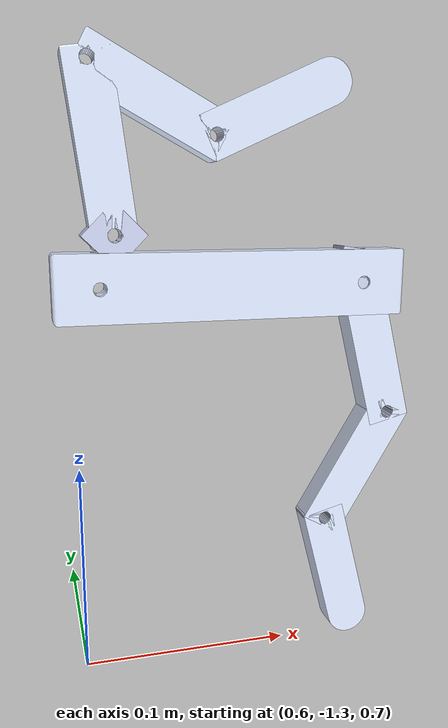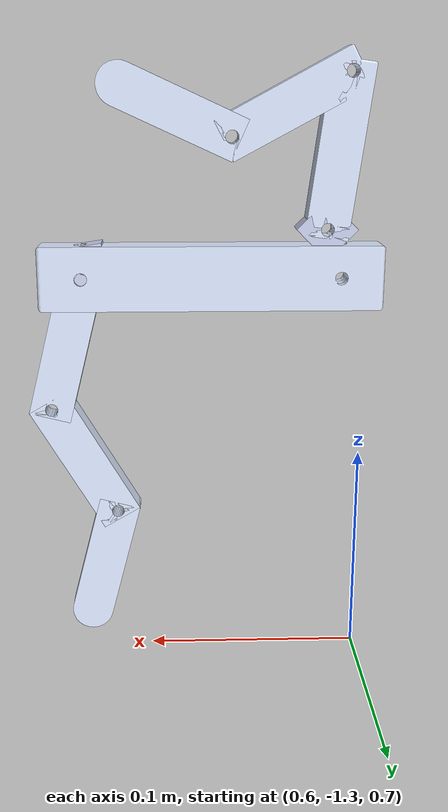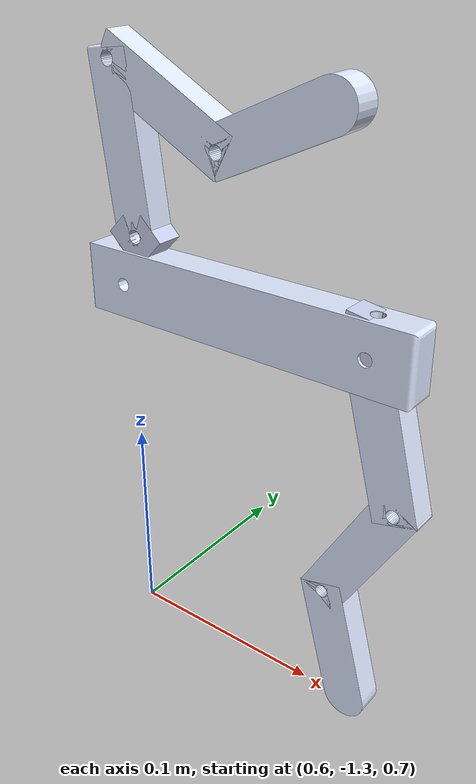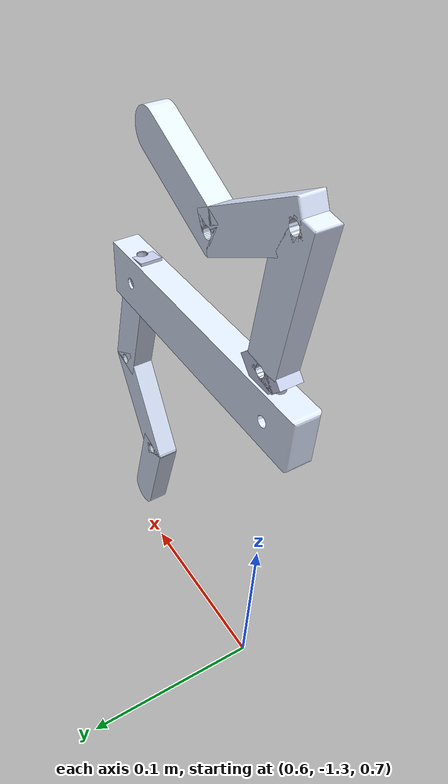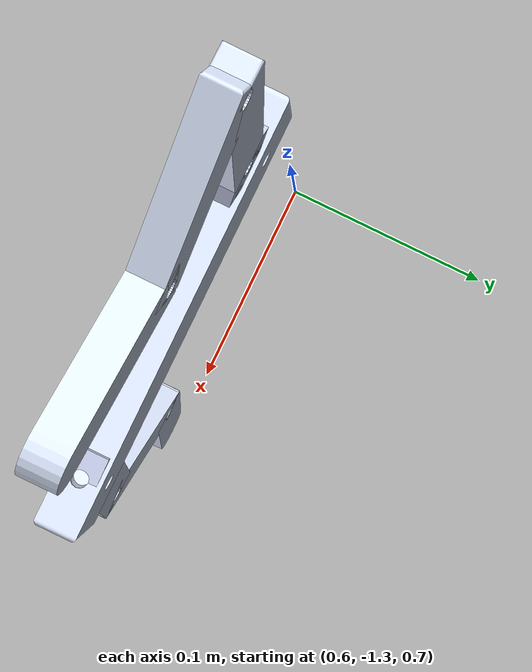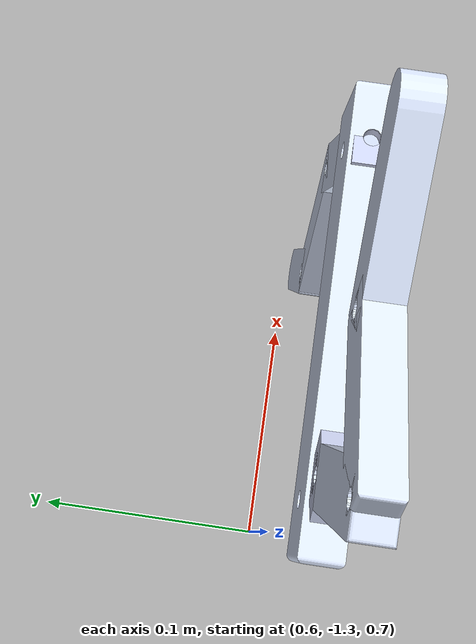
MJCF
<mujoco model="main scene">
  <include file="two_link_manipulator.xml"/>

  <statistic center="0 0 0.1" extent="0.8"/>

  <visual>
    <headlight diffuse="0.6 0.6 0.6" ambient="0.3 0.3 0.3" specular="0 0 0"/>
    <rgba haze="0.15 0.25 0.35 1"/>
    <global azimuth="-130" elevation="-20"/>
  </visual>

  <asset>
    <texture type="skybox" builtin="gradient" rgb1="0.3 0.5 0.7" rgb2="0 0 0" width="512" height="3072"/>
    <texture type="2d" name="groundplane" builtin="checker" mark="edge" rgb1="0.2 0.3 0.4" rgb2="0.1 0.2 0.3"
      markrgb="0.8 0.8 0.8" width="300" height="300"/>
    <material name="groundplane" texture="groundplane" texuniform="true" texrepeat="5 5" reflectance="0.2"/>
  </asset>

  <worldbody>
    <light pos="0 0 1.5" dir="0 0 -1" directional="true"/>
    <geom name="floor" size="0 0 0.05" type="plane" material="groundplane"/>
  </worldbody>
</mujoco>

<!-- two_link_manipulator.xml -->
<mujoco model="two_link_manipulator">
  <compiler angle="radian" coordinate="local" meshdir="meshes"/>
  <option timestep="0.002" integrator="RK4"/>

  <asset>
    <mesh name="palm_mesh" file="palm.STL"/>
    <mesh name="Left_base_mesh" file="Left_base.STL"/>
    <mesh name="LL1_mesh" file="LL1.STL"/>
    <mesh name="LL2_mesh" file="LL2.STL"/>
    <mesh name="LL3_mesh" file="LL3.STL"/>
    <mesh name="Right_base_mesh" file="Right_base.STL"/>
    <mesh name="RL1_mesh" file="RL1.STL"/>
    <mesh name="RL2_mesh" file="RL2.STL"/>
    <mesh name="RL3_mesh" file="RL3.STL"/>
  </asset>

  <worldbody>
    <!-- Root fixed base: palm -->
    <body name="palm" pos="0 0 0" euler="0 0 0">
      <inertial mass="0.18762"
                pos="0.67078 0.88478 1.3084"
                diaginertia="1.7744e-05 3.9275e-04 4.0334e-04"/>
      <geom name="palm_geom" type="mesh" mesh="palm_mesh" rgba="0.86667 0.9098 1 1" contype="1" conaffinity="1"/>

      <!-- LEFT ARM CHAIN -->
      <!-- joint1: parent=palm -> child=Left_base -->
      <body name="Left_base" pos="0.61073 -1.3084 0.89978" euler="1.5708 0 -0.77764">
        <inertial mass="0.0040046"
                  pos="0 0.01 2.8652e-08"
                  diaginertia="1.9205e-07 2.1036e-07 2.9779e-07"/>
        <geom name="Left_base_geom" type="mesh" mesh="Left_base_mesh" rgba="0.79216 0.81961 0.93333 1" contype="1" conaffinity="1"/>
        <joint name="joint1" type="hinge" pos="0 0 0" axis="0 1 0" range="-1.57 1.57"/>

        <!-- joint2: Left_base -> LL1 -->
        <body name="LL1" pos="0 0.01 0" euler="0 0 -0.66305">
          <inertial mass="0.049843"
                    pos="-0.035 1.2879e-14 2.2204e-16"
                    diaginertia="2.3166e-06 2.5769e-05 2.6891e-05"/>
          <geom name="LL1_geom" type="mesh" mesh="LL1_mesh" rgba="0.86667 0.9098 1 1" contype="1" conaffinity="1"/>
          <joint name="joint2" type="hinge" pos="0 0 0" axis="0 0 1" range="-1.57 1.57"/>

          <!-- joint3: LL1 -> LL2 -->
          <body name="LL2" pos="-0.07 0 0" euler="0 0 0.95183">
            <inertial mass="0.043363"
                      pos="0.03 9.4369e-15 4.5680e-10"
                      diaginertia="2.0228e-06 1.7217e-05 1.8201e-05"/>
            <geom name="LL2_geom" type="mesh" mesh="LL2_mesh" rgba="0.86667 0.9098 1 1" contype="1" conaffinity="1"/>
            <joint name="joint3" type="hinge" pos="0 0 0" axis="0 0 1" range="-1.57 1.57"/>

            <!-- joint4: LL2 -> LL3 -->
            <body name="LL3" pos="0.06 0 0" euler="0 0 0.91379">
              <inertial mass="0.042971"
                        pos="0.029641 -6.7376e-09 3.9692e-09"
                        diaginertia="1.9341e-06 1.6622e-05 1.7525e-05"/>
              <geom name="LL3_geom" type="mesh" mesh="LL3_mesh" rgba="0.86667 0.9098 1 1" contype="1" conaffinity="1"/>
              <joint name="joint4" type="hinge" pos="0 0 0" axis="0 0 1" range="-1.57 1.57"/>
            </body>
          </body>
        </body>
      </body>

      <!-- RIGHT ARM CHAIN -->
      <!-- joint5: parent=palm -> child=Right_base -->
      <body name="Right_base" pos="0.73083 -1.3084 0.89978" euler="1.5708 0 2.9852">
        <inertial mass="0.0040046"
                  pos="0 0.01 2.8652e-08"
                  diaginertia="1.9205e-07 2.1036e-07 2.9779e-07"/>
        <geom name="Right_base_geom" type="mesh" mesh="Right_base_mesh" rgba="0.79216 0.81961 0.93333 1" contype="1" conaffinity="1"/>
        <joint name="joint5" type="hinge" pos="0 0 0" axis="0 1 0" range="-1.57 1.57"/>

        <!-- joint6: Right_base -> RL1 -->
        <body name="RL1" pos="0 0.01 0" euler="0 0 1.9755">
          <inertial mass="0.049843"
                    pos="0.035 5.6621e-15 4.5604e-10"
                    diaginertia="2.3166e-06 2.5768e-05 2.6891e-05"/>
          <geom name="RL1_geom" type="mesh" mesh="RL1_mesh" rgba="0.86667 0.9098 1 1" contype="1" conaffinity="1"/>
          <joint name="joint6" type="hinge" pos="0 0 0" axis="0 0 1" range="-1.57 1.57"/>

          <!-- joint7: RL1 -> RL2 -->
          <body name="RL2" pos="0.07 0 0" euler="0 0 -0.77973">
            <inertial mass="0.043363"
                      pos="0.03 0 4.5680e-10"
                      diaginertia="2.0228e-06 1.7217e-05 1.8201e-05"/>
            <geom name="RL2_geom" type="mesh" mesh="RL2_mesh" rgba="0.86667 0.9098 1 1" contype="1" conaffinity="1"/>
            <joint name="joint7" type="hinge" pos="0 0 0" axis="0 0 1" range="-1.57 1.57"/>

            <!-- joint8: RL2 -> RL3 -->
            <body name="RL3" pos="0.06 0 0" euler="0 0 0.78605">
              <inertial mass="0.042971"
                        pos="0.029641 -5.9431e-09 2.6922e-10"
                        diaginertia="1.9341e-06 1.6622e-05 1.7525e-05"/>
              <geom name="RL3_geom" type="mesh" mesh="RL3_mesh" rgba="0.86667 0.9098 1 1" contype="1" conaffinity="1"/>
              <joint name="joint8" type="hinge" pos="0 0 0" axis="0 0 1" range="-1.57 1.57"/>
            </body>
          </body>
        </body>
      </body>
    </body>
  </worldbody>

  <actuator>
    <motor name="a_joint1" joint="joint1" gear="1"/>
    <motor name="a_joint2" joint="joint2" gear="1"/>
    <motor name="a_joint3" joint="joint3" gear="1"/>
    <motor name="a_joint4" joint="joint4" gear="1"/>
    <motor name="a_joint5" joint="joint5" gear="1"/>
    <motor name="a_joint6" joint="joint6" gear="1"/>
    <motor name="a_joint7" joint="joint7" gear="1"/>
    <motor name="a_joint8" joint="joint8" gear="1"/>
  </actuator>
</mujoco>
